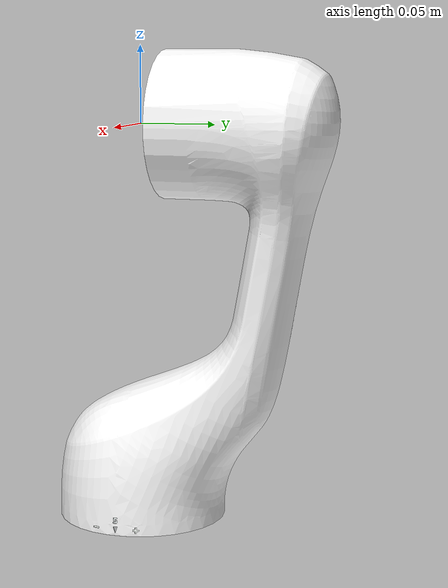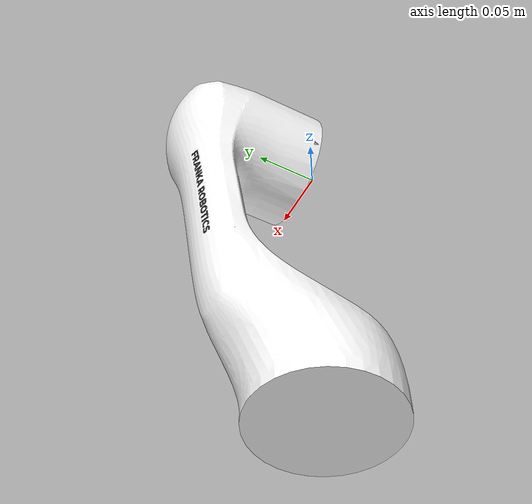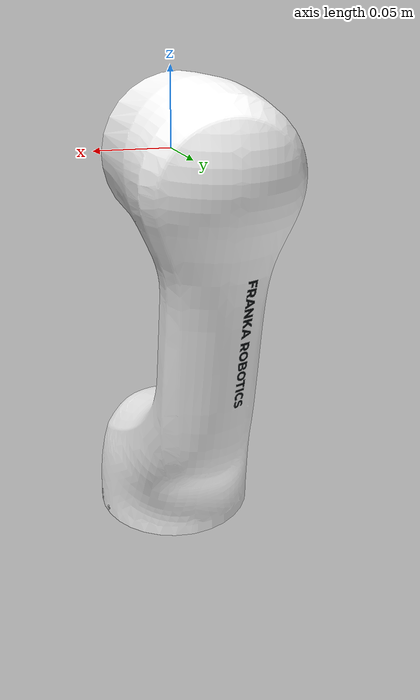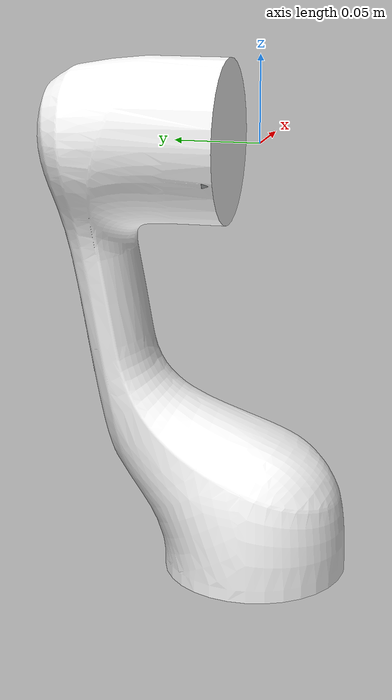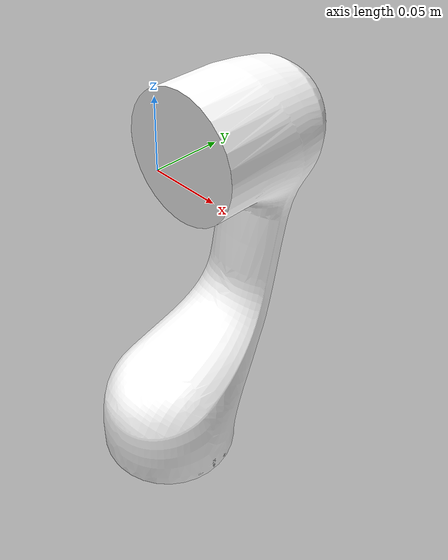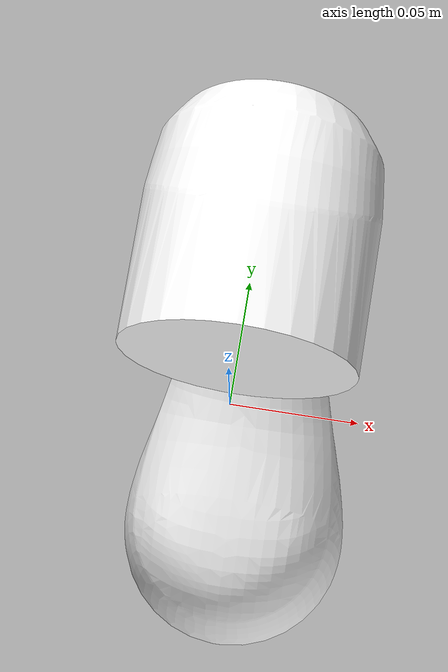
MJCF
<mujoco model="link5">
  <default>
    <default class="visual">
      <geom group="2" type="mesh" contype="0" conaffinity="0"/>
    </default>
    <default class="collision">
      <geom group="3" type="mesh"/>
    </default>
  </default>
  <asset>
    <material name="7016_Buttons_Logos_Banderole" specular="0.0" shininess="0.25" rgba="0.038204 0.049707 0.056129 1.000000"/>
    <material name="Axis_Number" specular="0.0" shininess="0.25" rgba="0.970930 1.000000 0.998062 1.000000"/>
    <material name="Reference_Triangles" specular="0.0" shininess="0.25" rgba="0.667369 0.678494 0.681913 1.000000"/>
    <material name="Rotation_Direction" specular="0.0" shininess="0.25" rgba="0.966878 0.989899 0.967645 1.000000"/>
    <material name="Shell_White" specular="0.0" shininess="0.25" rgba="1.000000 1.000000 1.000000 1.000000"/>
    <mesh file="link5_0.obj"/>
    <mesh file="link5_1.obj"/>
    <mesh file="link5_2.obj"/>
    <mesh file="link5_3.obj"/>
    <mesh file="link5_4.obj"/>
  </asset>
  <worldbody>
    <body name="link5">
      <geom mesh="link5_0" material="Axis_Number" class="visual"/>
      <geom mesh="link5_1" material="Reference_Triangles" class="visual"/>
      <geom mesh="link5_2" material="Rotation_Direction" class="visual"/>
      <geom mesh="link5_3" material="Shell_White" class="visual"/>
      <geom mesh="link5_4" material="7016_Buttons_Logos_Banderole" class="visual"/>
      <geom mesh="link5_0" class="collision"/>
      <geom mesh="link5_1" class="collision"/>
      <geom mesh="link5_2" class="collision"/>
      <geom mesh="link5_3" class="collision"/>
      <geom mesh="link5_4" class="collision"/>
    </body>
  </worldbody>
</mujoco>
